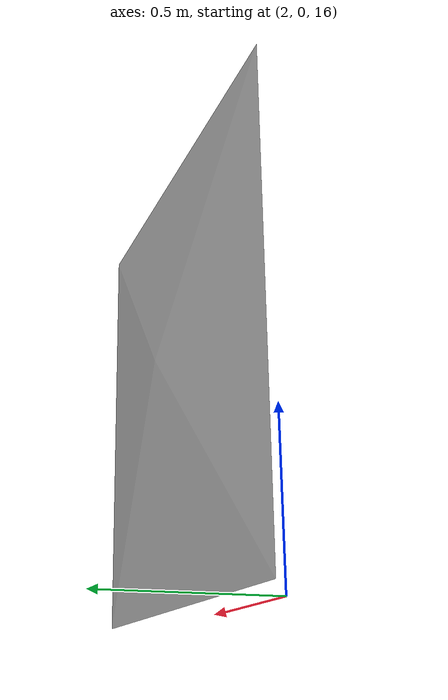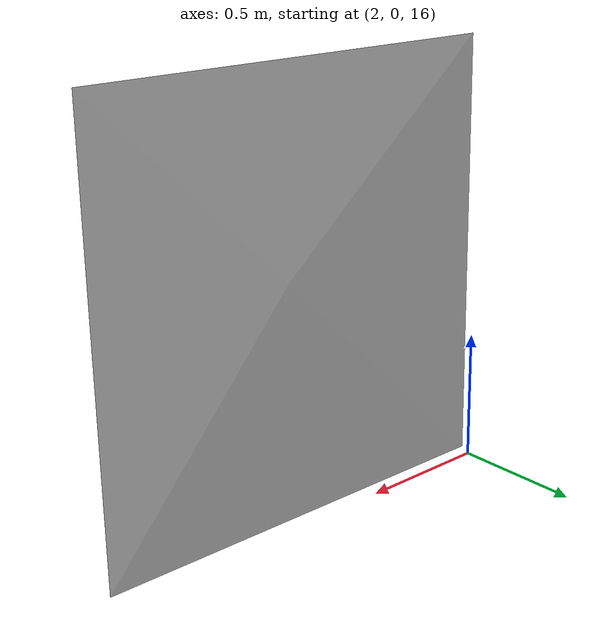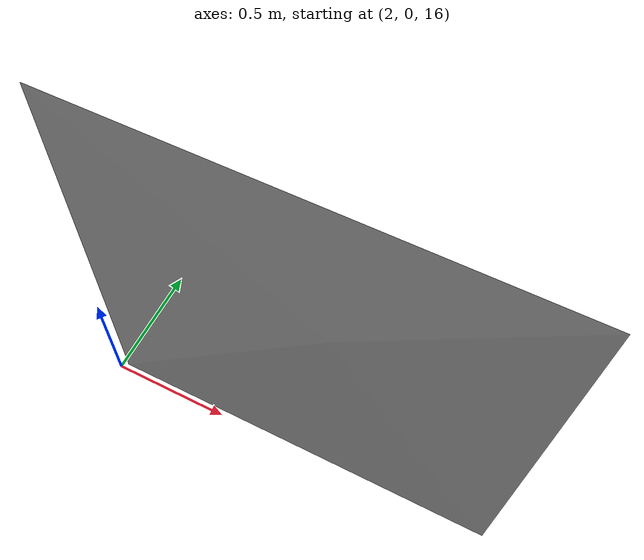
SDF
<?xml version="1.0" ?>
<sdf version="1.9">
  <model name="clover_02">
    <static>true</static>
    <link name="link">
      <collision name="collision">
        <pose>0 0 0.1 0 0 0</pose>
        <geometry>
          <box>
            <size>0.4 0.4 0.2</size>
          </box>
        </geometry>
      </collision>
      <visual name="visual">
        <geometry>
          <mesh>
            <uri>model://clover_02/meshes/Clover-02.obj</uri>
          </mesh>
        </geometry>
      </visual>
    </link>
  </model>
</sdf>
